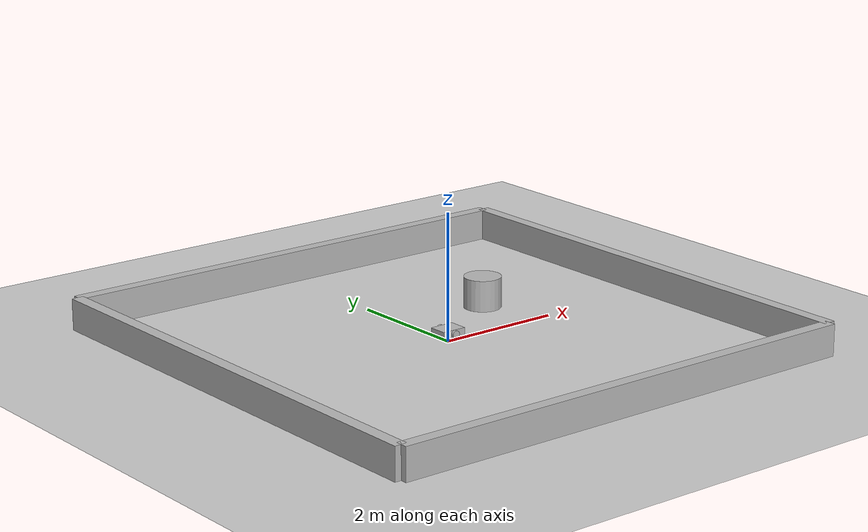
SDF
<?xml version="1.0" ?>
<sdf version="1.10">
  <world name="pra_world">
    <physics name="default" type="ignored">
      <max_step_size>0.001</max_step_size>
      <real_time_factor>0</real_time_factor>
    </physics>
    <plugin filename="gz-sim-physics-system" name="gz::sim::systems::Physics"/>
    <plugin filename="gz-sim-user-commands-system" name="gz::sim::systems::UserCommands"/>
    <plugin filename="gz-sim-scene-broadcaster-system" name="gz::sim::systems::SceneBroadcaster"/>
    <plugin filename="gz-sim-sensors-system" name="gz::sim::systems::Sensors">
      <render_engine>ogre2</render_engine>
    </plugin>

    <light type="directional" name="sun">
      <pose>0 0 10 0 0 0</pose>
      <diffuse>0.8 0.8 0.8 1</diffuse>
    </light>

    <model name="ground">
      <static>true</static>
      <link name="link">
        <collision name="collision">
          <geometry><plane><normal>0 0 1</normal><size>20 20</size></plane></geometry>
        </collision>
        <visual name="visual">
          <geometry><plane><normal>0 0 1</normal><size>20 20</size></plane></geometry>
        </visual>
      </link>
    </model>

    <!-- four walls, a closed 8x8 arena centered on the origin -->
    <model name="walls">
      <static>true</static>
      <link name="north">
        <pose>0 4 0.25 0 0 0</pose>
        <collision name="c"><geometry><box><size>8 0.2 0.5</size></box></geometry></collision>
        <visual name="v"><geometry><box><size>8 0.2 0.5</size></box></geometry></visual>
      </link>
      <link name="south">
        <pose>0 -4 0.25 0 0 0</pose>
        <collision name="c"><geometry><box><size>8 0.2 0.5</size></box></geometry></collision>
        <visual name="v"><geometry><box><size>8 0.2 0.5</size></box></geometry></visual>
      </link>
      <link name="east">
        <pose>4 0 0.25 0 0 1.5708</pose>
        <collision name="c"><geometry><box><size>8 0.2 0.5</size></box></geometry></collision>
        <visual name="v"><geometry><box><size>8 0.2 0.5</size></box></geometry></visual>
      </link>
      <link name="west">
        <pose>-4 0 0.25 0 0 1.5708</pose>
        <collision name="c"><geometry><box><size>8 0.2 0.5</size></box></geometry></collision>
        <visual name="v"><geometry><box><size>8 0.2 0.5</size></box></geometry></visual>
      </link>
    </model>

    <!-- an obstacle so the lidar sees structure, not just walls -->
    <model name="pillar">
      <static>true</static>
      <link name="link">
        <pose>1.5 1.0 0.25 0 0 0</pose>
        <collision name="c"><geometry><cylinder><radius>0.3</radius><length>0.5</length></cylinder></geometry></collision>
        <visual name="v"><geometry><cylinder><radius>0.3</radius><length>0.5</length></cylinder></geometry></visual>
      </link>
    </model>

    <model name="rover">
      <pose>0 0 0.1 0 0 0</pose>
      <link name="chassis">
        <pose>0 0 0.06 0 0 0</pose>
        <inertial>
          <mass>2.0</mass>
          <inertia><ixx>0.02</ixx><iyy>0.04</iyy><izz>0.05</izz></inertia>
        </inertial>
        <collision name="c"><geometry><box><size>0.4 0.3 0.12</size></box></geometry></collision>
        <visual name="v"><geometry><box><size>0.4 0.3 0.12</size></box></geometry></visual>
        <sensor name="lidar" type="gpu_lidar">
          <pose>0.15 0 0.12 0 0 0</pose>
          <topic>scan</topic>
          <update_rate>10</update_rate>
          <lidar>
            <scan>
              <horizontal>
                <samples>5</samples>
                <min_angle>-1.0</min_angle>
                <max_angle>1.0</max_angle>
              </horizontal>
            </scan>
            <range><min>0.1</min><max>10.0</max></range>
          </lidar>
          <always_on>true</always_on>
        </sensor>
      </link>
      <link name="left_wheel">
        <pose>0 0.18 0.06 -1.5708 0 0</pose>
        <inertial><mass>0.3</mass><inertia><ixx>0.001</ixx><iyy>0.001</iyy><izz>0.001</izz></inertia></inertial>
        <collision name="c"><geometry><cylinder><radius>0.06</radius><length>0.04</length></cylinder></geometry></collision>
        <visual name="v"><geometry><cylinder><radius>0.06</radius><length>0.04</length></cylinder></geometry></visual>
      </link>
      <link name="right_wheel">
        <pose>0 -0.18 0.06 -1.5708 0 0</pose>
        <inertial><mass>0.3</mass><inertia><ixx>0.001</ixx><iyy>0.001</iyy><izz>0.001</izz></inertia></inertial>
        <collision name="c"><geometry><cylinder><radius>0.06</radius><length>0.04</length></cylinder></geometry></collision>
        <visual name="v"><geometry><cylinder><radius>0.06</radius><length>0.04</length></cylinder></geometry></visual>
      </link>
      <link name="caster">
        <pose>-0.15 0 0.03 0 0 0</pose>
        <inertial><mass>0.1</mass><inertia><ixx>0.0001</ixx><iyy>0.0001</iyy><izz>0.0001</izz></inertia></inertial>
        <collision name="c">
          <geometry><sphere><radius>0.03</radius></sphere></geometry>
          <surface><friction><ode><mu>0.0</mu><mu2>0.0</mu2></ode></friction></surface>
        </collision>
        <visual name="v"><geometry><sphere><radius>0.03</radius></sphere></geometry></visual>
      </link>
      <joint name="left_wheel_joint" type="revolute">
        <parent>chassis</parent><child>left_wheel</child>
        <axis><xyz>0 0 1</xyz></axis>
      </joint>
      <joint name="right_wheel_joint" type="revolute">
        <parent>chassis</parent><child>right_wheel</child>
        <axis><xyz>0 0 1</xyz></axis>
      </joint>
      <joint name="caster_joint" type="ball">
        <parent>chassis</parent><child>caster</child>
      </joint>
      <plugin filename="gz-sim-diff-drive-system" name="gz::sim::systems::DiffDrive">
        <left_joint>left_wheel_joint</left_joint>
        <right_joint>right_wheel_joint</right_joint>
        <wheel_separation>0.36</wheel_separation>
        <wheel_radius>0.06</wheel_radius>
        <topic>cmd_vel</topic>
        <odom_topic>odom</odom_topic>
        <odom_publish_frequency>50</odom_publish_frequency>
      </plugin>
    </model>
  </world>
</sdf>
